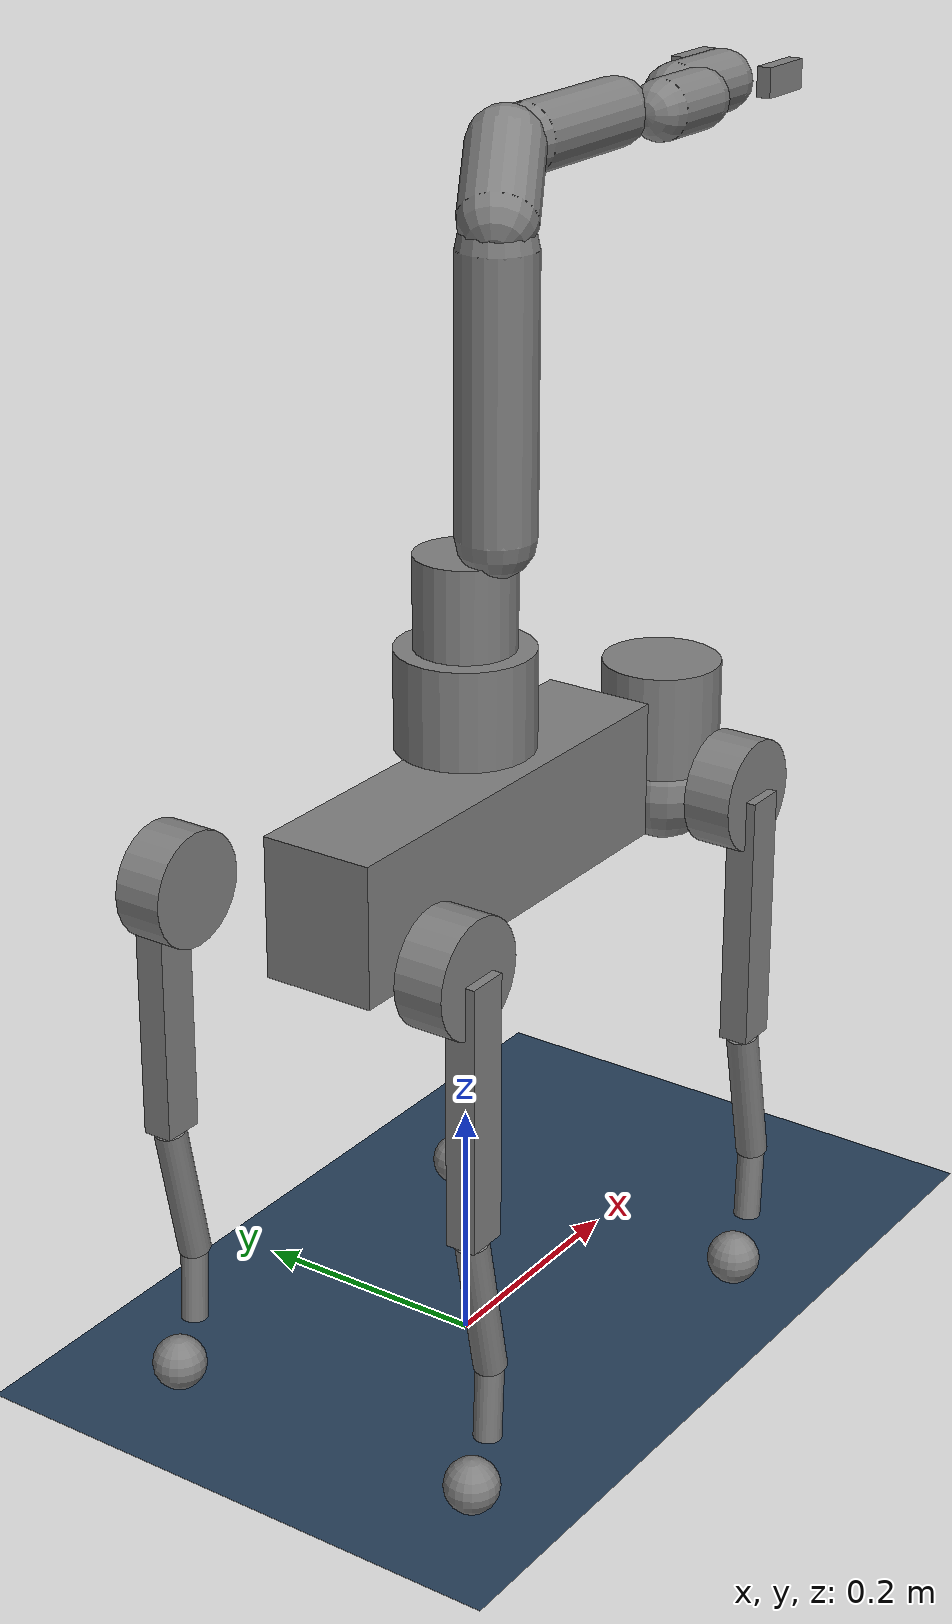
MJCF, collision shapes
<mujoco model="go2_with_d1 flat scene">
  <include file="go2_with_d1.xml"/>

  <statistic center="0 0 0.25" extent="1.5"/>

  <visual>
    <headlight diffuse="0.6 0.6 0.6" ambient="0.3 0.3 0.3" specular="0 0 0"/>
    <rgba haze="0.15 0.25 0.35 1"/>
    <global azimuth="120" elevation="-20"/>
  </visual>

  <asset>
    <texture type="skybox" builtin="gradient" rgb1="0.3 0.5 0.7" rgb2="0 0 0"
      width="512" height="3072"/>
    <texture type="2d" name="groundplane" builtin="checker" mark="edge"
      rgb1="0.2 0.3 0.4" rgb2="0.1 0.2 0.3" markrgb="0.8 0.8 0.8"
      width="300" height="300"/>
    <material name="groundplane" texture="groundplane" texuniform="true"
      texrepeat="5 5" reflectance="0.2"/>
  </asset>

  <worldbody>
    <light pos="0 0 1.5" dir="0 0 -1" directional="true"/>
    <geom name="floor" size="0 0 0.05" type="plane" material="groundplane"/>
  </worldbody>
</mujoco>

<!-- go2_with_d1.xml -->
<mujoco model="go2_with_d1">
  <compiler angle="radian" meshdir="assets" autolimits="true" />

  <option cone="elliptic" impratio="100" />

  <default>
    <default class="go2">
      <geom friction="0.4" margin="0.001" condim="1"/>
      <joint axis="0 1 0" damping="0.1" armature="0.01" frictionloss="0.2"/>
      <motor ctrlrange="-23.5 23.5"/>
      <default class="abduction">
        <joint axis="1 0 0" range="-1.0472 1.0472"/>
      </default>
      <default class="hip">
        <default class="front_hip">
          <joint range="-1.5708 3.4907"/>
        </default>
        <default class="back_hip">
          <joint range="-0.5236 4.5379"/>
        </default>
      </default>
      <default class="knee">
        <joint range="-2.7227 -0.83776"/>
        <motor ctrlrange="-23.5 23.5"/>
      </default>
      <default class="visual">
        <geom type="mesh" contype="0" conaffinity="0" group="2"/>
      </default>
      <default class="collision">
        <!-- Match the Isaac articulation's disabled self-collisions while
             retaining contact with world/object geoms (which use conaffinity=1). -->
        <geom group="3" conaffinity="0"/>
        <default class="foot">
          <geom size="0.022" pos="-0.002 0 -0.213" priority="1" condim="6"
            friction="0.4 0.02 0.01"/>
        </default>
      </default>
      <default class="d1_joint">
        <joint damping="0.1" armature="0.001" frictionloss="0.02"/>
      </default>
      <default class="d1_visual">
        <geom type="mesh" contype="0" conaffinity="0" group="2" material="d1"/>
      </default>
      <default class="d1_collision">
        <!-- D1 collisions interact with the world, Go2, and non-adjacent D1
             links. Parent-child pairs are excluded explicitly below. -->
        <geom group="3" conaffinity="1" friction="0.7 0.02 0.002"/>
      </default>
    </default>
  </default>

  <asset>
    <material name="metal" rgba=".9 .95 .95 1" />
    <material name="black" rgba="0 0 0 1" />
    <material name="white" rgba="1 1 1 1" />
    <material name="gray" rgba="0.671705 0.692426 0.774270 1" />
    <material name="d1" rgba="0.79216 0.81961 0.93333 1" />

    <mesh file="../../go2/assets/base_0.obj" />
    <mesh file="../../go2/assets/base_1.obj" />
    <mesh file="../../go2/assets/base_2.obj" />
    <mesh file="../../go2/assets/base_3.obj" />
    <mesh file="../../go2/assets/base_4.obj" />
    <mesh file="../../go2/assets/hip_0.obj" />
    <mesh file="../../go2/assets/hip_1.obj" />
    <mesh file="../../go2/assets/thigh_0.obj" />
    <mesh file="../../go2/assets/thigh_1.obj" />
    <mesh file="../../go2/assets/thigh_mirror_0.obj" />
    <mesh file="../../go2/assets/thigh_mirror_1.obj" />
    <mesh file="../../go2/assets/calf_0.obj" />
    <mesh file="../../go2/assets/calf_1.obj" />
    <mesh file="../../go2/assets/calf_mirror_0.obj" />
    <mesh file="../../go2/assets/calf_mirror_1.obj" />
    <mesh file="../../go2/assets/foot.obj" />
    <mesh name="d1_base" file="base_link.STL" />
    <mesh name="d1_link1" file="Empty_Link1.STL" />
    <mesh name="d1_link2" file="Empty_Link2.STL" />
    <mesh name="d1_link3" file="Empty_Link3.STL" />
    <mesh name="d1_link4" file="Empty_Link4.STL" />
    <mesh name="d1_link5" file="Empty_Link5.STL" />
    <mesh name="d1_link6" file="Empty_Link6.STL" />
    <mesh name="d1_finger_left" file="Empty_Link_L.STL" />
    <mesh name="d1_finger_right" file="Empty_Link_R.STL" />
  </asset>

  <worldbody>
    <body name="base_link" pos="0 0 0.445" childclass="go2">
      <inertial pos="0.021112 0 -0.005366" quat="-0.000543471 0.713435 -0.00173769 0.700719"
        mass="6.921"
        diaginertia="0.107027 0.0980771 0.0244531" />
      <freejoint />
      <geom mesh="base_0" material="black" class="visual" />
      <geom mesh="base_1" material="black" class="visual" />
      <geom mesh="base_2" material="black" class="visual" />
      <geom mesh="base_3" material="white" class="visual" />
      <geom mesh="base_4" material="gray" class="visual" />
      <geom size="0.1881 0.04675 0.057" type="box" class="collision" />
      <geom size="0.05 0.045" pos="0.285 0 0.01" type="cylinder" class="collision" />
      <geom size="0.047" pos="0.293 0 -0.06" class="collision" />
      <site name="imu" pos="-0.02557 0 0.04232" />
      <camera
        name="Gurukul_depth"
        pos="0.33 0 0.08"
        xyaxes="0 -1 0 0.3420201433 0 0.9396926208"
        resolution="106 60"
        focal="0.11041 0.11041"
        sensorsize="0.20955 0.12240"
        principalpixel="0 0"
      />
      <body name="FL_hip" pos="0.1934 0.0465 0">
        <inertial pos="-0.0054 0.00194 -0.000105" quat="0.497014 0.499245 0.505462 0.498237"
          mass="0.678"
          diaginertia="0.00088403 0.000596003 0.000479967" />
        <joint name="FL_hip_joint" class="abduction" />
        <geom mesh="hip_0" material="metal" class="visual" />
        <geom mesh="hip_1" material="gray" class="visual" />
        <geom size="0.046 0.02" pos="0 0.08 0" quat="1 1 0 0" type="cylinder" class="collision" />
        <body name="FL_thigh" pos="0 0.0955 0">
          <inertial pos="-0.00374 -0.0223 -0.0327" quat="0.829533 0.0847635 -0.0200632 0.551623"
            mass="1.152"
            diaginertia="0.00594973 0.00584149 0.000878787" />
          <joint name="FL_thigh_joint" class="front_hip" />
          <geom mesh="thigh_0" material="metal" class="visual" />
          <geom mesh="thigh_1" material="gray" class="visual" />
          <geom size="0.1065 0.01225 0.017" pos="0 0 -0.1065" quat="0.707107 0 0.707107 0"
            type="box" class="collision" />
          <body name="FL_calf" pos="0 0 -0.213">
            <inertial pos="0.00629595 -0.000622121 -0.141417"
              quat="0.710672 0.00154099 -0.00450087 0.703508"
              mass="0.241352" diaginertia="0.0014901 0.00146356 5.31397e-05" />
            <joint name="FL_calf_joint" class="knee" />
            <geom mesh="calf_0" material="gray" class="visual" />
            <geom mesh="calf_1" material="black" class="visual" />
            <geom size="0.012 0.06" pos="0.008 0 -0.06" quat="0.994493 0 -0.104807 0"
              type="cylinder" class="collision" />
            <geom size="0.011 0.0325" pos="0.02 0 -0.148" quat="0.999688 0 0.0249974 0"
              type="cylinder" class="collision" />
            <geom pos="0 0 -0.213" mesh="foot" class="visual" material="black" />
            <geom name="FL" class="foot" />
            <body name="FL_foot" pos="0 0 -0.213" />
          </body>
        </body>
      </body>
      <body name="FR_hip" pos="0.1934 -0.0465 0">
        <inertial pos="-0.0054 -0.00194 -0.000105" quat="0.498237 0.505462 0.499245 0.497014"
          mass="0.678"
          diaginertia="0.00088403 0.000596003 0.000479967" />
        <joint name="FR_hip_joint" class="abduction" />
        <geom mesh="hip_0" material="metal" class="visual" quat="4.63268e-05 1 0 0" />
        <geom mesh="hip_1" material="gray" class="visual" quat="4.63268e-05 1 0 0" />
        <geom size="0.046 0.02" pos="0 -0.08 0" quat="0.707107 0.707107 0 0" type="cylinder"
          class="collision" />
        <body name="FR_thigh" pos="0 -0.0955 0">
          <inertial pos="-0.00374 0.0223 -0.0327" quat="0.551623 -0.0200632 0.0847635 0.829533"
            mass="1.152"
            diaginertia="0.00594973 0.00584149 0.000878787" />
          <joint name="FR_thigh_joint" class="front_hip" />
          <geom mesh="thigh_mirror_0" material="metal" class="visual" />
          <geom mesh="thigh_mirror_1" material="gray" class="visual" />
          <geom size="0.1065 0.01225 0.017" pos="0 0 -0.1065" quat="0.707107 0 0.707107 0"
            type="box" class="collision" />
          <body name="FR_calf" pos="0 0 -0.213">
            <inertial pos="0.00629595 0.000622121 -0.141417"
              quat="0.703508 -0.00450087 0.00154099 0.710672"
              mass="0.241352" diaginertia="0.0014901 0.00146356 5.31397e-05" />
            <joint name="FR_calf_joint" class="knee" />
            <geom mesh="calf_mirror_0" material="gray" class="visual" />
            <geom mesh="calf_mirror_1" material="black" class="visual" />
            <geom size="0.013 0.06" pos="0.01 0 -0.06" quat="0.995004 0 -0.0998334 0"
              type="cylinder" class="collision" />
            <geom size="0.011 0.0325" pos="0.02 0 -0.148" quat="0.999688 0 0.0249974 0"
              type="cylinder" class="collision" />
            <geom pos="0 0 -0.213" mesh="foot" class="visual" material="black" />
            <geom name="FR" class="foot" />
            <body name="FR_foot" pos="0 0 -0.213" />
          </body>
        </body>
      </body>
      <body name="RL_hip" pos="-0.1934 0.0465 0">
        <inertial pos="0.0054 0.00194 -0.000105" quat="0.505462 0.498237 0.497014 0.499245"
          mass="0.678"
          diaginertia="0.00088403 0.000596003 0.000479967" />
        <joint name="RL_hip_joint" class="abduction" />
        <geom mesh="hip_0" material="metal" class="visual" quat="4.63268e-05 0 1 0" />
        <geom mesh="hip_1" material="gray" class="visual" quat="4.63268e-05 0 1 0" />
        <geom size="0.046 0.02" pos="0 0.08 0" quat="0.707107 0.707107 0 0" type="cylinder"
          class="collision" />
        <body name="RL_thigh" pos="0 0.0955 0">
          <inertial pos="-0.00374 -0.0223 -0.0327" quat="0.829533 0.0847635 -0.0200632 0.551623"
            mass="1.152"
            diaginertia="0.00594973 0.00584149 0.000878787" />
          <joint name="RL_thigh_joint" class="back_hip" />
          <geom mesh="thigh_0" material="metal" class="visual" />
          <geom mesh="thigh_1" material="gray" class="visual" />
          <geom size="0.1065 0.01225 0.017" pos="0 0 -0.1065" quat="0.707107 0 0.707107 0"
            type="box" class="collision" />
          <body name="RL_calf" pos="0 0 -0.213">
            <inertial pos="0.00629595 -0.000622121 -0.141417"
              quat="0.710672 0.00154099 -0.00450087 0.703508"
              mass="0.241352" diaginertia="0.0014901 0.00146356 5.31397e-05" />
            <joint name="RL_calf_joint" class="knee" />
            <geom mesh="calf_0" material="gray" class="visual" />
            <geom mesh="calf_1" material="black" class="visual" />
            <geom size="0.013 0.06" pos="0.01 0 -0.06" quat="0.995004 0 -0.0998334 0"
              type="cylinder" class="collision" />
            <geom size="0.011 0.0325" pos="0.02 0 -0.148" quat="0.999688 0 0.0249974 0"
              type="cylinder" class="collision" />
            <geom pos="0 0 -0.213" mesh="foot" class="visual" material="black" />
            <geom name="RL" class="foot" />
            <body name="RL_foot" pos="0 0 -0.213" />
          </body>
        </body>
      </body>
      <body name="RR_hip" pos="-0.1934 -0.0465 0">
        <inertial pos="0.0054 -0.00194 -0.000105" quat="0.499245 0.497014 0.498237 0.505462"
          mass="0.678"
          diaginertia="0.00088403 0.000596003 0.000479967" />
        <joint name="RR_hip_joint" class="abduction" />
        <geom mesh="hip_0" material="metal" class="visual"
          quat="2.14617e-09 4.63268e-05 4.63268e-05 -1" />
        <geom mesh="hip_1" material="gray" class="visual"
          quat="2.14617e-09 4.63268e-05 4.63268e-05 -1" />
        <geom size="0.046 0.02" pos="0 -0.08 0" quat="0.707107 0.707107 0 0" type="cylinder"
          class="collision" />
        <body name="RR_thigh" pos="0 -0.0955 0">
          <inertial pos="-0.00374 0.0223 -0.0327" quat="0.551623 -0.0200632 0.0847635 0.829533"
            mass="1.152"
            diaginertia="0.00594973 0.00584149 0.000878787" />
          <joint name="RR_thigh_joint" class="back_hip" />
          <geom mesh="thigh_mirror_0" material="metal" class="visual" />
          <geom mesh="thigh_mirror_1" material="gray" class="visual" />
          <geom size="0.1065 0.01225 0.017" pos="0 0 -0.1065" quat="0.707107 0 0.707107 0"
            type="box" class="collision" />
          <body name="RR_calf" pos="0 0 -0.213">
            <inertial pos="0.00629595 0.000622121 -0.141417"
              quat="0.703508 -0.00450087 0.00154099 0.710672"
              mass="0.241352" diaginertia="0.0014901 0.00146356 5.31397e-05" />
            <joint name="RR_calf_joint" class="knee" />
            <geom mesh="calf_mirror_0" material="gray" class="visual" />
            <geom mesh="calf_mirror_1" material="black" class="visual" />
            <geom size="0.013 0.06" pos="0.01 0 -0.06" quat="0.995004 0 -0.0998334 0"
              type="cylinder" class="collision" />
            <geom size="0.011 0.0325" pos="0.02 0 -0.148" quat="0.999688 0 0.0249974 0"
              type="cylinder" class="collision" />
            <geom pos="0 0 -0.213" mesh="foot" class="visual" material="black" />
            <geom name="RR" class="foot" />
            <body name="RR_foot" pos="0 0 -0.213" />
          </body>
        </body>
      </body>
      <body name="d1_base_link" pos="0 0 0.08">
        <inertial pos="-9.0106e-05 -0.00012378 0.033469" mass="1.498"
          fullinertia="0.002691790498 0.002740711271 0.004495854398 1.064159278e-05 3.508873379e-05 7.077087479e-06"/>
        <geom mesh="d1_base" class="d1_visual"/>
        <geom type="cylinder" size="0.055 0.04" pos="0 0 0.035" class="d1_collision"/>
        <body name="d1_link1" pos="0 0 0.0738">
          <inertial pos="-0.0030892 6.1834e-05 0.031665" mass="0.408"
            fullinertia="0.0002165512852 0.000185597552 0.0001963510404 5.4649694e-10 -4.366870665e-08 -1.205161975e-08"/>
          <joint name="arm_1_joint" class="d1_joint" axis="0 0 -1" range="-2.36 2.36"
            actuatorfrcrange="-3.3 3.3"/>
          <geom mesh="d1_link1" class="d1_visual"/>
          <geom type="cylinder" size="0.04 0.04" pos="0 0 0.035" class="d1_collision"/>
          <body name="d1_link2" pos="0 -0.0276 0.0578">
            <inertial pos="5.7801e-05 0.027243 0.19413" mass="0.472"
              fullinertia="0.0005809645971 0.0005212083671 0.0001477128127 -4.725172726e-11 -3.342930385e-07 -9.95187497e-09"/>
            <joint name="arm_2_joint" class="d1_joint" axis="0 1 0" range="-1.570796327 1.570796327"
              actuatorfrcrange="-3.3 3.3"/>
            <geom mesh="d1_link2" class="d1_visual"/>
            <geom type="capsule" size="0.031" fromto="0 0 0.035 0 0 0.25" class="d1_collision"/>
            <body name="d1_link3" pos="0 -0.0004 0.27">
              <inertial pos="0.016105 0.0275 0.044231" mass="0.162"
                fullinertia="5.152379045e-05 3.998533602e-05 3.040821922e-05 -9.947674866e-11 -5.218505568e-06 -1.387434266e-10"/>
              <joint name="arm_3_joint" class="d1_joint" axis="0 1 0" range="-1.570796327 1.570796327"
                actuatorfrcrange="-3.3 3.3"/>
              <geom mesh="d1_link3" class="d1_visual"/>
              <geom type="capsule" size="0.03" fromto="0 0 0 0.05 0.0275 0.041325" class="d1_collision"/>
              <body name="d1_link4" pos="0.05 0.0275 0.041325">
                <!-- Full D1 wrist-chain tensors from tactile-aware-quadrupedal-loco-manipulation.
                     Its custom gripper links are separate children and are not folded into these inertials. -->
                <inertial pos="0.088538 5.32e-05 0.000443"
                  quat="0.999988497 0.00363434039 -0.00038402775 -0.00310644111"
                  mass="0.234" diaginertia="4.997387851e-05 0.0007160240964 0.0007470020251"/>
                <joint name="arm_4_joint" class="d1_joint" axis="1 0 0" range="-2.36 2.36"
                  actuatorfrcrange="-1.7 1.7"/>
                <geom mesh="d1_link4" class="d1_visual"/>
                <geom type="capsule" size="0.027" fromto="0.025 0 0 0.145 0 0" class="d1_collision"/>
                <body name="d1_link5" pos="0.15468 -0.0258 0.0001">
                  <inertial pos="0.044236 0.025833 0.005276"
                    quat="0.69996542 0.69814776 0.103264121 -0.109428687"
                    mass="0.151" diaginertia="3.826194973e-05 6.693524851e-05 7.270280176e-05"/>
                  <joint name="arm_5_joint" class="d1_joint" axis="0 1 0" range="-1.57 1.57"
                    actuatorfrcrange="-1.7 1.7"/>
                  <geom mesh="d1_link5" class="d1_visual"/>
                  <geom type="capsule" size="0.024" fromto="0.015 0 0 0.07 0 0" class="d1_collision"/>
                  <body name="d1_link6" pos="0.0777 0.025822 -0.0010718">
                    <inertial pos="0.03835 -3.7e-05 0.005894"
                      quat="0.0580321964 -0.710811467 -0.698793129 0.0553848794"
                      mass="0.173" diaginertia="0.0001149955334 0.0001244142487 0.0001865902178"/>
                    <joint name="arm_6_joint" class="d1_joint" axis="1 0 0" range="-2.36 2.36"
                      actuatorfrcrange="-1.7 1.7"/>
                    <geom mesh="d1_link6" class="d1_visual"/>
                    <geom type="capsule" size="0.025" fromto="0 0 0 0.07 0 0" class="d1_collision"/>
                    <site name="d1_gripper_center" pos="0.09 0 0.0031"/>
                    <body name="d1_finger_left" pos="0.0718 -0.033778 0.0031">
                      <inertial pos="0.018562 -0.0073492 -0.0034988" mass="0.027"
                        fullinertia="2.071890473e-06 4.818477119e-06 3.673053263e-06 -3.038664666e-07 2.715596399e-11 -2.804516129e-14"/>
                      <joint name="arm_7_1_joint" class="d1_joint" type="slide" axis="0 1 0"
                        range="0 0.033" actuatorfrcrange="-15 15"/>
                      <geom mesh="d1_finger_left" class="d1_visual"/>
                      <geom type="box" size="0.025 0.006 0.012" pos="0.02 -0.006 0" class="d1_collision"/>
                    </body>
                    <body name="d1_finger_right" pos="0.0718 0.033022 0.0031">
                      <inertial pos="0.018562 0.0073492 -0.0035012" mass="0.027"
                        fullinertia="2.071890473e-06 4.818477119e-06 3.673053263e-06 3.038664666e-07 -2.715596399e-11 -2.797426857e-14"/>
                      <joint name="arm_7_2_joint" class="d1_joint" type="slide" axis="0 -1 0"
                        range="0 0.033"/>
                      <geom mesh="d1_finger_right" class="d1_visual"/>
                      <geom type="box" size="0.025 0.006 0.012" pos="0.02 0.006 0" class="d1_collision"/>
                    </body>
                  </body>
                </body>
              </body>
            </body>
          </body>
        </body>
      </body>
    </body>
  </worldbody>

  <contact>
    <exclude body1="d1_base_link" body2="d1_link1"/>
    <exclude body1="d1_link1" body2="d1_link2"/>
    <exclude body1="d1_link2" body2="d1_link3"/>
    <!-- Coarse capsule proxies overlap for these pairs in the valid ready pose. -->
    <exclude body1="d1_link2" body2="d1_link4"/>
    <exclude body1="d1_link2" body2="d1_link5"/>
    <exclude body1="d1_link3" body2="d1_link4"/>
    <exclude body1="d1_link4" body2="d1_link5"/>
    <exclude body1="d1_link5" body2="d1_link6"/>
    <exclude body1="d1_link6" body2="d1_finger_left"/>
    <exclude body1="d1_link6" body2="d1_finger_right"/>
  </contact>

  <equality>
    <!-- One physical gripper command; the second jaw mirrors its displacement. -->
    <joint name="d1_gripper_mimic" joint1="arm_7_2_joint" joint2="arm_7_1_joint"
      polycoef="0 1 0 0 0" solref="0.002 1"/>
  </equality>

  <actuator>
    <motor class="abduction" name="FR_hip" joint="FR_hip_joint" />
    <motor class="hip" name="FR_thigh" joint="FR_thigh_joint" />
    <motor class="knee" name="FR_calf" joint="FR_calf_joint" />
    <motor class="abduction" name="FL_hip" joint="FL_hip_joint" />
    <motor class="hip" name="FL_thigh" joint="FL_thigh_joint" />
    <motor class="knee" name="FL_calf" joint="FL_calf_joint" />
    <motor class="abduction" name="RR_hip" joint="RR_hip_joint" />
    <motor class="hip" name="RR_thigh" joint="RR_thigh_joint" />
    <motor class="knee" name="RR_calf" joint="RR_calf_joint" />
    <motor class="abduction" name="RL_hip" joint="RL_hip_joint" />
    <motor class="hip" name="RL_thigh" joint="RL_thigh_joint" />
    <motor class="knee" name="RL_calf" joint="RL_calf_joint" />
    <motor name="arm_1" joint="arm_1_joint" ctrlrange="-3.3 3.3"/>
    <motor name="arm_2" joint="arm_2_joint" ctrlrange="-3.3 3.3"/>
    <motor name="arm_3" joint="arm_3_joint" ctrlrange="-3.3 3.3"/>
    <motor name="arm_4" joint="arm_4_joint" ctrlrange="-1.7 1.7"/>
    <motor name="arm_5" joint="arm_5_joint" ctrlrange="-1.7 1.7"/>
    <motor name="arm_6" joint="arm_6_joint" ctrlrange="-1.7 1.7"/>
    <motor name="gripper" joint="arm_7_1_joint" ctrlrange="-15 15"/>
  </actuator>

  <sensor>
    <jointpos name="FR_hip_pos" joint="FR_hip_joint" />
    <jointpos name="FR_thigh_pos" joint="FR_thigh_joint" />
    <jointpos name="FR_calf_pos" joint="FR_calf_joint" />
    <jointpos name="FL_hip_pos" joint="FL_hip_joint" />
    <jointpos name="FL_thigh_pos" joint="FL_thigh_joint" />
    <jointpos name="FL_calf_pos" joint="FL_calf_joint" />
    <jointpos name="RR_hip_pos" joint="RR_hip_joint" />
    <jointpos name="RR_thigh_pos" joint="RR_thigh_joint" />
    <jointpos name="RR_calf_pos" joint="RR_calf_joint" />
    <jointpos name="RL_hip_pos" joint="RL_hip_joint" />
    <jointpos name="RL_thigh_pos" joint="RL_thigh_joint" />
    <jointpos name="RL_calf_pos" joint="RL_calf_joint" />
    <jointpos name="arm_1_pos" joint="arm_1_joint" />
    <jointpos name="arm_2_pos" joint="arm_2_joint" />
    <jointpos name="arm_3_pos" joint="arm_3_joint" />
    <jointpos name="arm_4_pos" joint="arm_4_joint" />
    <jointpos name="arm_5_pos" joint="arm_5_joint" />
    <jointpos name="arm_6_pos" joint="arm_6_joint" />
    <jointpos name="gripper_pos" joint="arm_7_1_joint" />

    <jointvel name="FR_hip_vel" joint="FR_hip_joint" />
    <jointvel name="FR_thigh_vel" joint="FR_thigh_joint" />
    <jointvel name="FR_calf_vel" joint="FR_calf_joint" />
    <jointvel name="FL_hip_vel" joint="FL_hip_joint" />
    <jointvel name="FL_thigh_vel" joint="FL_thigh_joint" />
    <jointvel name="FL_calf_vel" joint="FL_calf_joint" />
    <jointvel name="RR_hip_vel" joint="RR_hip_joint" />
    <jointvel name="RR_thigh_vel" joint="RR_thigh_joint" />
    <jointvel name="RR_calf_vel" joint="RR_calf_joint" />
    <jointvel name="RL_hip_vel" joint="RL_hip_joint" />
    <jointvel name="RL_thigh_vel" joint="RL_thigh_joint" />
    <jointvel name="RL_calf_vel" joint="RL_calf_joint" />
    <jointvel name="arm_1_vel" joint="arm_1_joint" />
    <jointvel name="arm_2_vel" joint="arm_2_joint" />
    <jointvel name="arm_3_vel" joint="arm_3_joint" />
    <jointvel name="arm_4_vel" joint="arm_4_joint" />
    <jointvel name="arm_5_vel" joint="arm_5_joint" />
    <jointvel name="arm_6_vel" joint="arm_6_joint" />
    <jointvel name="gripper_vel" joint="arm_7_1_joint" />

    <jointactuatorfrc name="FR_hip_torque" joint="FR_hip_joint" noise="0.01" />
    <jointactuatorfrc name="FR_thigh_torque" joint="FR_thigh_joint" noise="0.01" />
    <jointactuatorfrc name="FR_calf_torque" joint="FR_calf_joint" noise="0.01" />
    <jointactuatorfrc name="FL_hip_torque" joint="FL_hip_joint" noise="0.01" />
    <jointactuatorfrc name="FL_thigh_torque" joint="FL_thigh_joint" noise="0.01" />
    <jointactuatorfrc name="FL_calf_torque" joint="FL_calf_joint" noise="0.01" />
    <jointactuatorfrc name="RR_hip_torque" joint="RR_hip_joint" noise="0.01" />
    <jointactuatorfrc name="RR_thigh_torque" joint="RR_thigh_joint" noise="0.01" />
    <jointactuatorfrc name="RR_calf_torque" joint="RR_calf_joint" noise="0.01" />
    <jointactuatorfrc name="RL_hip_torque" joint="RL_hip_joint" noise="0.01" />
    <jointactuatorfrc name="RL_thigh_torque" joint="RL_thigh_joint" noise="0.01" />
    <jointactuatorfrc name="RL_calf_torque" joint="RL_calf_joint" noise="0.01" />
    <jointactuatorfrc name="arm_1_torque" joint="arm_1_joint" noise="0.01" />
    <jointactuatorfrc name="arm_2_torque" joint="arm_2_joint" noise="0.01" />
    <jointactuatorfrc name="arm_3_torque" joint="arm_3_joint" noise="0.01" />
    <jointactuatorfrc name="arm_4_torque" joint="arm_4_joint" noise="0.01" />
    <jointactuatorfrc name="arm_5_torque" joint="arm_5_joint" noise="0.01" />
    <jointactuatorfrc name="arm_6_torque" joint="arm_6_joint" noise="0.01" />
    <jointactuatorfrc name="gripper_torque" joint="arm_7_1_joint" noise="0.01" />

    <framequat name="imu_quat" objtype="site" objname="imu" />
    <gyro name="imu_gyro" site="imu" />
    <accelerometer name="imu_acc" site="imu" />

    <framepos name="frame_pos" objtype="site" objname="imu" />
    <framelinvel name="frame_vel" objtype="site" objname="imu" />
  </sensor>

  <keyframe>
    <key name="home"
      qpos="0 0 0.4 1 0 0 0 0.1 0.8 -1.5 -0.1 0.8 -1.5 0.1 1 -1.5 -0.1 1 -1.5 0 -1.553343 1.553343 0 0 0 0 0"
      ctrl="0 0 0 0 0 0 0 0 0 0 0 0 0 0 0 0 0 0 0" />
  </keyframe>
</mujoco>
